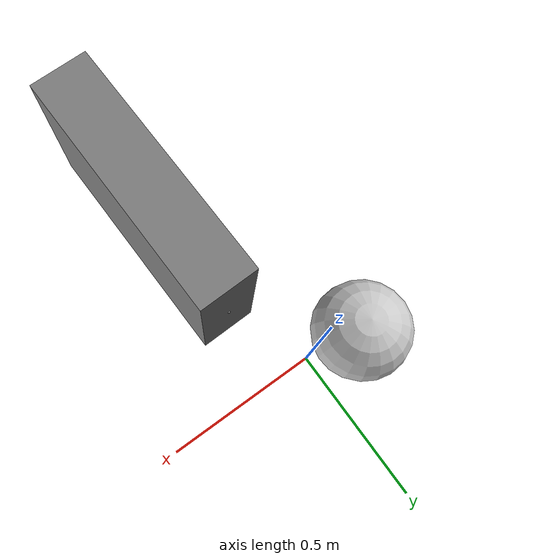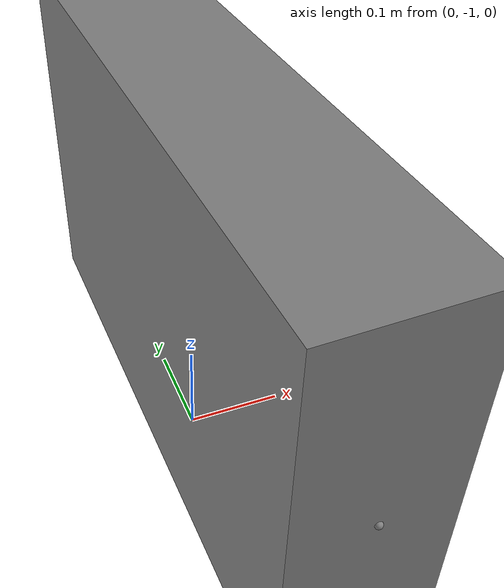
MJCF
<mujoco>
            <compiler angle="radian" autolimits="true" />
            <compiler meshdir="asset" texturedir="asset" assetdir="asset" />
            <option gravity="0 0 -9.81" />
            <default class="main">
            <geom friction="0 0 0" solimp="0.9 1 0.001 0.01 20" solref="0.02 1" condim="1" />
        </default>

        <visual>
            <headlight diffuse="0.7 0.7 0.7" ambient="0.5 0.5 0.5" />
            <global offwidth="1920" offheight="1080" />
        </visual>

        <asset>
            <texture type="skybox" builtin="gradient" rgb1="0 0.5 0.7" rgb2="0 0 0" width="512" height="512" />
            <texture type="2d" name="checks1" builtin="checker" rgb1="1 1 1" rgb2="0 0 0" width="256" height="256" />
            <material name="test_color" texture="checks1" texuniform="true" texrepeat="2 2" />
            <material name="reflectance" reflectance=".4" />
            <texture name="grid" type="2d" builtin="checker" width="512" height="512" rgb1="1.0 0.6235 0.1098" rgb2="1.0 0.749 0.4118" />
            <texture name="white-texture-background" type="2d" file="/home/aryansatpathy/DevStuff/cmu/PHO/sim/geom_sources/fixed_sources/rocket/rocket.white-texture-background.png" content_type="image/png" />
            <material name="pulley" texture="grid" texrepeat="2 2" texuniform="true" />

        </asset>
        <worldbody><body name="rigidrotationentity_0" pos="0.0 0.0 0.0" quat="1.0 0.0 0.0 0.0"><joint name="{self.name}.joint" type="hinge" axis="1 0 0" pos="-0.12 0.18 0.11" />
<body name="rigidrotationentity_0.bar-0" pos="0.11 -0.27 -0.02" quat="-0.7168010572865429 0 0 0.6972777382599378"><geom name="rigidrotationentity_0.bar-0.geom" type="box" pos="0.455 0 0" size="0.455 0.105 0.285" rgba="0.5 0.5 0.5 1" mass="1.35" quat="0 0 0 1" contype="1" conaffinity="1" />
<site name="rigidrotationentity_0.bar-0.left_site" pos="0 0 0" quat="1 0 0 0" />
<site name="rigidrotationentity_0.bar-0.right_site" pos="0.91 0 0" quat="1 0 0 0" />
<site name="rigidrotationentity_0.bar-0.center_site" pos="0.455 0 0" quat="1 0 0 0" />
</body>
<body name="rigidrotationentity_0.sphere-1" pos="-0.11 0.04 0.31" quat="-0.9826420410161534 0 0 0.18551177652000544"><geom name="rigidrotationentity_0.sphere-1.geom" type="sphere" pos="0 0 0" size="0.14" material="pulley" rgba="0.8 0.8 0.8 1.0" mass="3.19" quat="0 0 0 1" contype="1" conaffinity="1" />
<site name="rigidrotationentity_0.sphere-1.site" pos="0 0 0" quat="1 0 0 0" />
<site name="rigidrotationentity_0.sphere-1.center_site" pos="0 0 0" quat="1 0 0 0" />
</body>
</body>

        </worldbody><sensor>

        </sensor>
        <custom>

        </custom>
        <contact>

        </contact>
        <actuator>

        </actuator>
    </mujoco>
